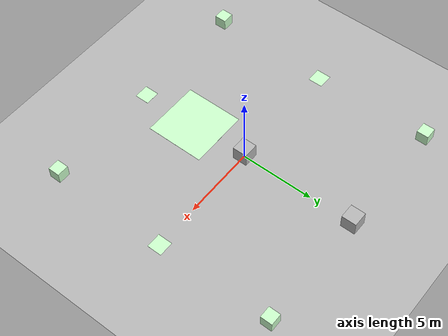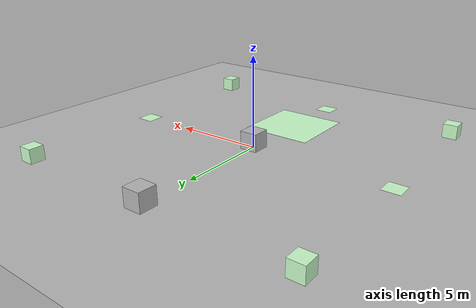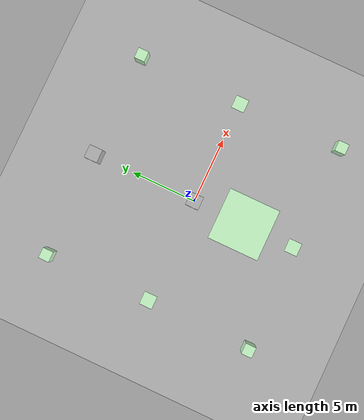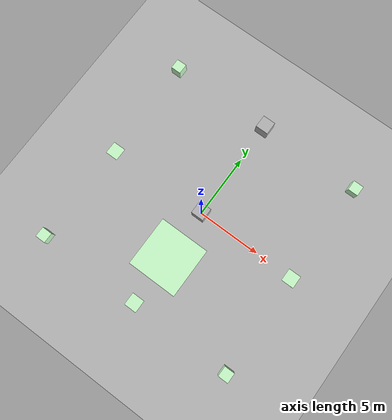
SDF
<sdf version="1.8">
 <world name="empty">
  <physics name="4ms" type="ignored">
   <max_step_size>0.004</max_step_size>
   <real_time_factor>1.0</real_time_factor>
  </physics>
  <plugin filename="gz-sim-physics-system" name="gz::sim::systems::Physics"/>
  <plugin filename="gz-sim-user-commands-system" name="gz::sim::systems::UserCommands"/>
  <plugin filename="gz-sim-scene-broadcaster-system" name="gz::sim::systems::SceneBroadcaster"/>
  <plugin filename="gz-sim-sensors-system" name="gz::sim::systems::Sensors">
   <render_engine>ogre2</render_engine>
  </plugin>
  <light type="directional" name="sun">
   <pose>0 0 10 0 0 0</pose>
   <diffuse>0.8 0.8 0.8 1</diffuse>
   <specular>0.2 0.2 0.2 1</specular>
   <attenuation>
    <range>1000</range>
    <constant>0.9</constant>
    <linear>0.01</linear>
    <quadratic>0.001</quadratic>
   </attenuation>
   <direction>-0.5 0.1 -0.9</direction>
  </light>
  <include><uri>model://grass_plane</uri></include>
  <include><name>number1</name><uri>model://number1</uri><pose>8 8 0.4 0 0 0</pose></include>
  <include><name>number2</name><uri>model://number2</uri><pose>8 -8 0.4 0 0 0</pose></include>
  <include><name>number3</name><uri>model://number3</uri><pose>-8 -8 0.4 0 0 0</pose></include>
  <include><name>number4</name><uri>model://number4</uri><pose>-8 8 0.4 0 0 0</pose></include>
  <include><name>logo</name><uri>model://logoJdeRobot</uri><pose>0 -4 0 0 0 0</pose></include>
  <include><name>arrow1-2</name><uri>model://arrow</uri><pose>8 0 0.01 0 0 -1.57</pose></include>
  <include><name>arrow2-3</name><uri>model://arrow</uri><pose>0 -8 0.01 0 0 -3.14159</pose></include>
  <include><name>arrow3-4</name><uri>model://arrow</uri><pose>-8 0 0.01 0 0 1.57</pose></include>
  <include>
   <name>takeoff-target</name>
   <uri>model://custom_box_target_green</uri>
   <pose>0 0 0.5 0 0 0</pose>
  </include>
  <include><name>land-target</name><uri>model://custom_box_target_red</uri><pose>0 8 0.5 0 0 0</pose></include>
 </world>
</sdf>

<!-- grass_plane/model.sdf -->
<sdf version="1.4">
  <model name="grass_plane">
    <static>true</static>
    <link name="link">
      <collision name="collision">
        <geometry>
          <plane>
            <normal>0 0 1</normal>
            <size>750 750</size>
          </plane>
        </geometry>
        <surface>
          <friction>
            <ode>
              <mu>0.5</mu>
              <mu2>.5</mu2>
            </ode>
          </friction>
        </surface>
      </collision>

      <visual name="visual_0">
        <pose>2 -5 0 0 0 0</pose>

        <cast_shadows>false</cast_shadows>
        <geometry>
          <mesh>
            <uri>model://grass_plane/meshes/grass_plane.dae</uri>
            <scale>3 3 1</scale>
          </mesh>
        </geometry>
      </visual>
    </link>
  </model>
</sdf>

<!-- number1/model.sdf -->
<sdf version="1.6">
  <model name="number1">
    <pose>0 0 0.4 0 0 0</pose>
    <static>true</static>
    <link name="link">
      <visual name="visual">
        <geometry>
          <mesh>
            <uri>model://number1/meshes/number.dae</uri>
          </mesh>
        </geometry>
        <material>
          <ambient>0.8 1.0 0.8 1.0</ambient>
          <diffuse>0.8 1.0 0.8 1.0</diffuse>
          <specular>0.1 0.1 0.1 1.0</specular>
          <pbr>
            <metal>
              <albedo_map>model://number1/materials/textures/number1.png</albedo_map>
            </metal>
          </pbr>
        </material>
      </visual>
    </link>
  </model>
</sdf>

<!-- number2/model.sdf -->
<sdf version="1.6">
  <model name="number2">
    <pose>0 0 0.4 0 0 0</pose>
    <static>true</static>
    <link name="link">
      <visual name="visual">
        <geometry>
          <mesh>
            <uri>model://number1/meshes/number.dae</uri>
          </mesh>
        </geometry>
        <material>
          <ambient>0.8 1.0 0.8 1.0</ambient>
          <diffuse>0.8 1.0 0.8 1.0</diffuse>
          <specular>0.1 0.1 0.1 1.0</specular>
          <pbr>
            <metal>
              <albedo_map>model://number2/materials/textures/number2.png</albedo_map>
            </metal>
          </pbr>
        </material>
      </visual>
    </link>
  </model>
</sdf>

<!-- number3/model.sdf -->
<sdf version="1.5">
  <model name="number3">
    <pose>0 0 0.4 0 0 0</pose>
    <static>true</static>
    <link name="link">
      <visual name="visual">
        <geometry>
          <mesh>
            <uri>model://number1/meshes/number.dae</uri>
          </mesh>
        </geometry>
        <material>
          <ambient>0.8 1.0 0.8 1.0</ambient>
          <diffuse>0.8 1.0 0.8 1.0</diffuse>
          <specular>0.1 0.1 0.1 1.0</specular>
          <pbr>
            <metal>
              <albedo_map>model://number3/materials/textures/number3.png</albedo_map>
            </metal>
          </pbr>
        </material>
      </visual>
    </link>
  </model>
</sdf>

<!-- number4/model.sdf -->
<sdf version="1.6">
  <model name="number4">
    <pose>0 0 0.4 0 0 0</pose>
    <static>true</static>
    <link name="link">
      <visual name="visual">
        <geometry>
          <mesh>
            <uri>model://number1/meshes/number.dae</uri>
          </mesh>
        </geometry>
        <material>
          <ambient>0.8 1.0 0.8 1.0</ambient>
          <diffuse>0.8 1.0 0.8 1.0</diffuse>
          <specular>0.1 0.1 0.1 1.0</specular>
          <pbr>
            <metal>
              <albedo_map>model://number4/materials/textures/number4.png</albedo_map>
            </metal>
          </pbr>
        </material>
      </visual>
    </link>
  </model>
</sdf>

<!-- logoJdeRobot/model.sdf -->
<sdf version="1.6">
  <model name="logoJdeRobot">
    <static>true</static>
    <link name="link">
      <collision name="collision">
        <geometry>
          <plane>
            <normal>0 0 1</normal>
            <size>1 1</size>
          </plane>
        </geometry>
        <surface>
          <friction>
            <ode>
              <mu>0.5</mu>
              <mu2>.5</mu2>
            </ode>
          </friction>
        </surface>
      </collision>

      <visual name="visual_0">
        <pose>0 0 0.1 0 0 0</pose>

        <cast_shadows>false</cast_shadows>
        <geometry>
          <plane>
            <normal>0 0 1</normal>
            <size>4 4</size>
          </plane>
        </geometry>
        <material>
          <ambient>0.8 1.0 0.8 1.0</ambient>
          <diffuse>0.8 1.0 0.8 1.0</diffuse>
          <specular>0.1 0.1 0.1 1.0</specular>
          <pbr>
            <metal>
              <albedo_map>
                model://logoJdeRobot/materials/textures/logoJdeRobot.png</albedo_map>
            </metal>
          </pbr>
        </material>
      </visual>
    </link>
  </model>
</sdf>

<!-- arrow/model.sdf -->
<sdf version="1.4">
  <model name="arrow">
    <static>true</static>
    <link name="link">
      <collision name="collision">
        <geometry>
          <plane>
            <normal>0 0 1</normal>
            <size>1 1</size>
          </plane>
        </geometry>
        <surface>
          <friction>
            <ode>
              <mu>0.5</mu>
              <mu2>.5</mu2>
            </ode>
          </friction>
        </surface>
      </collision>

      <visual name="visual_0">
        <pose>0 0 0 0 0 0</pose>
        <cast_shadows>false</cast_shadows>
        <geometry>
          <plane>
            <normal>0 0 1</normal>
            <size>1 1</size>
          </plane>
        </geometry>
        <material>
          <ambient>0.8 1.0 0.8 1.0</ambient>
          <diffuse>0.8 1.0 0.8 1.0</diffuse>
          <specular>0.1 0.1 0.1 1.0</specular>
          <pbr>
            <metal>
              <albedo_map>model://arrow/materials/textures/arrow_black.png</albedo_map>
            </metal>
          </pbr>
        </material>
      </visual>
    </link>
  </model>
</sdf>

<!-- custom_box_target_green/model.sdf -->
<sdf version="1.6">
  <model name="custom_box_target_green">
    <pose>0 0 0.5 0 0 0</pose>
    <static>true</static>
    <link name="link">
      <collision name="collision">
        <geometry>
          <box>
            <size>1 1 1</size>
          </box>
        </geometry>
      </collision>

      <visual name="visual">
        <geometry>
          <mesh>
            <uri>model://custom_box_target_green/meshes/mesh.dae</uri>
            <scale>0.16666 0.16666 0.5</scale>
          </mesh>
        </geometry>
      </visual>
    </link>
  </model>
</sdf>

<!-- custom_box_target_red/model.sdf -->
<sdf version="1.6">
  <model name="custom_box_target_red">
    <pose>0 0 0.5 0 0 0</pose>
    <static>true</static>
    <link name="link">
      <collision name="collision">
        <geometry>
          <box>
            <size>1 1 1</size>
          </box>
        </geometry>
      </collision>

      <visual name="visual">
        <geometry>
          <mesh>
            <uri>model://custom_box_target_red/meshes/mesh.dae</uri>
            <scale>0.16666 0.16666 0.5</scale>
          </mesh>
        </geometry>
      </visual>
    </link>
  </model>
</sdf>
